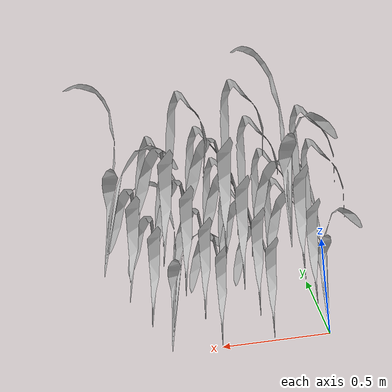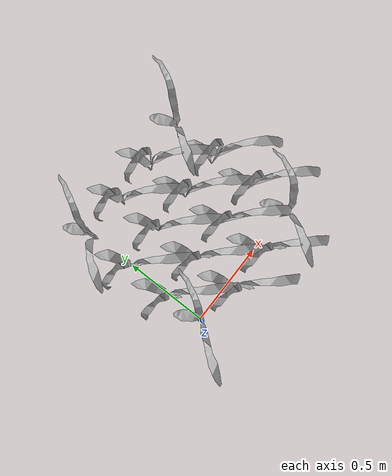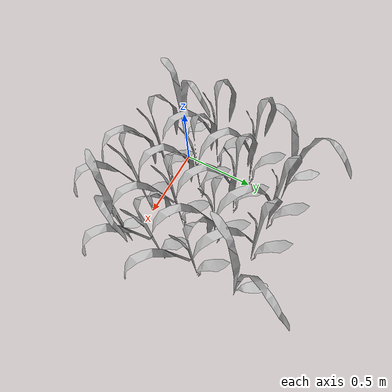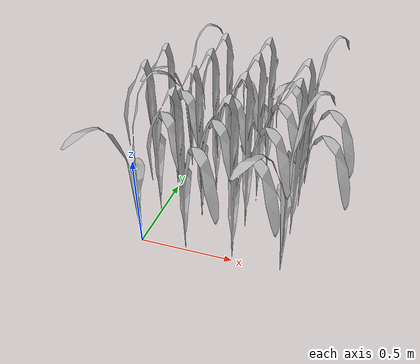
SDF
<?xml version="1.0" ?>
<sdf version="1.6">
  <model name='maize_03'>

    <link name='link_00'>
      <collision name='collision'>
        <pose>0.5 0.5 0 0 0 0</pose>
        <geometry>
          <box>
            <size>1 1 2</size>
          </box>
        </geometry>
        <max_contacts>3</max_contacts>
      </collision>
      <visual name='visual'>
        <geometry>
          <mesh>
            <uri>model://maize_02/meshes/maize_02.dae</uri>
            <scale>0.6 0.6 1</scale>
          </mesh>
        </geometry>
      </visual>
    </link>

    <link name='link_01'>
    <pose frame=''>0 0.25 0 0 0 0</pose>
      <visual name='visual'>
        <geometry>
          <mesh>
            <uri>model://maize_01/meshes/maize_01.dae</uri>
            <scale>0.6 0.6 1</scale>
          </mesh>
        </geometry>
      </visual>
    </link>

    <link name='link_02'>
    <pose frame=''>0 0.5 0 0 0 0</pose>
      <visual name='visual'>
        <geometry>
          <mesh>
            <uri>model://maize_01/meshes/maize_01.dae</uri>
            <scale>0.6 0.6 1</scale>
          </mesh>
        </geometry>
      </visual>
    </link>

    <link name='link_03'>
    <pose frame=''>0 0.75 0 0 0 0</pose>
      <visual name='visual'>
        <geometry>
          <mesh>
            <uri>model://maize_02/meshes/maize_02.dae</uri>
            <scale>0.6 0.6 1</scale>
          </mesh>
        </geometry>
      </visual>
    </link>

    <link name='link_04'>
    <pose frame=''>0.25 0.75 0 0 0 0</pose>
      <visual name='visual'>
        <geometry>
          <mesh>
            <uri>model://maize_01/meshes/maize_01.dae</uri>
            <scale>0.6 0.6 1</scale>
          </mesh>
        </geometry>
      </visual>
    </link>

    <link name='link_05'>
    <pose frame=''>0.25 0.5 0 0 0 0</pose>
      <visual name='visual'>
        <geometry>
          <mesh>
            <uri>model://maize_01/meshes/maize_01.dae</uri>
            <scale>0.6 0.6 1</scale>
          </mesh>
        </geometry>
      </visual>
    </link>

    <link name='link_06'>
    <pose frame=''>0.25 0.25 0 0 0 0</pose>
      <visual name='visual'>
        <geometry>
          <mesh>
            <uri>model://maize_01/meshes/maize_01.dae</uri>
            <scale>0.6 0.6 1</scale>
          </mesh>
        </geometry>
      </visual>
    </link>

    <link name='link_07'>
    <pose frame=''>0.25 0 0 0 0 0</pose>
      <visual name='visual'>
        <geometry>
          <mesh>
            <uri>model://maize_01/meshes/maize_01.dae</uri>
            <scale>0.6 0.6 1</scale>
          </mesh>
        </geometry>
      </visual>
    </link>

    <link name='link_08'>
    <pose frame=''>0.5 0 0 0 0 0</pose>
      <visual name='visual'>
        <geometry>
          <mesh>
            <uri>model://maize_01/meshes/maize_01.dae</uri>
            <scale>0.6 0.6 1</scale>
          </mesh>
        </geometry>
      </visual>
    </link>

   <link name='link_09'>
    <pose frame=''>0.5 0.25 0 0 0 0</pose>
      <visual name='visual'>
        <geometry>
          <mesh>
            <uri>model://maize_01/meshes/maize_01.dae</uri>
            <scale>0.6 0.6 1</scale>
          </mesh>
        </geometry>
      </visual>
    </link>

    <link name='link_10'>
    <pose frame=''>0.5 0.5 0 0 0 0</pose>
      <visual name='visual'>
        <geometry>
          <mesh>
            <uri>model://maize_01/meshes/maize_01.dae</uri>
            <scale>0.6 0.6 1</scale>
          </mesh>
        </geometry>
      </visual>
    </link>

   <link name='link_11'>
    <pose frame=''>0.5 0.75 0 0 0 0</pose>
      <visual name='visual'>
        <geometry>
          <mesh>
            <uri>model://maize_01/meshes/maize_01.dae</uri>
            <scale>0.6 0.6 1</scale>
          </mesh>
        </geometry>
      </visual>
    </link>

    <link name='link_12'>
    <pose frame=''>0.75 0.75 0 0 0 0</pose>
      <visual name='visual'>
        <geometry>
          <mesh>
            <uri>model://maize_02/meshes/maize_02.dae</uri>
            <scale>0.6 0.6 1</scale>
          </mesh>
        </geometry>
      </visual>
    </link>

    <link name='link_13'>
    <pose frame=''>0.75 0.5 0 0 0 0</pose>
      <visual name='visual'>
        <geometry>
          <mesh>
            <uri>model://maize_01/meshes/maize_01.dae</uri>
            <scale>0.6 0.6 1</scale>
          </mesh>
        </geometry>
      </visual>
    </link>

    <link name='link_14'>
    <pose frame=''>0.75 0.25 0 0 0 0</pose>
      <visual name='visual'>
        <geometry>
          <mesh>
            <uri>model://maize_01/meshes/maize_01.dae</uri>
            <scale>0.6 0.6 1</scale>
          </mesh>
        </geometry>
      </visual>
    </link>

    <link name='link_15'>
    <pose frame=''>0.75 0 0 0 0 0</pose>
      <visual name='visual'>
        <geometry>
          <mesh>
            <uri>model://maize_02/meshes/maize_02.dae</uri>
            <scale>0.6 0.6 1</scale>
          </mesh>
        </geometry>
      </visual>
    </link>

  </model>
</sdf>
